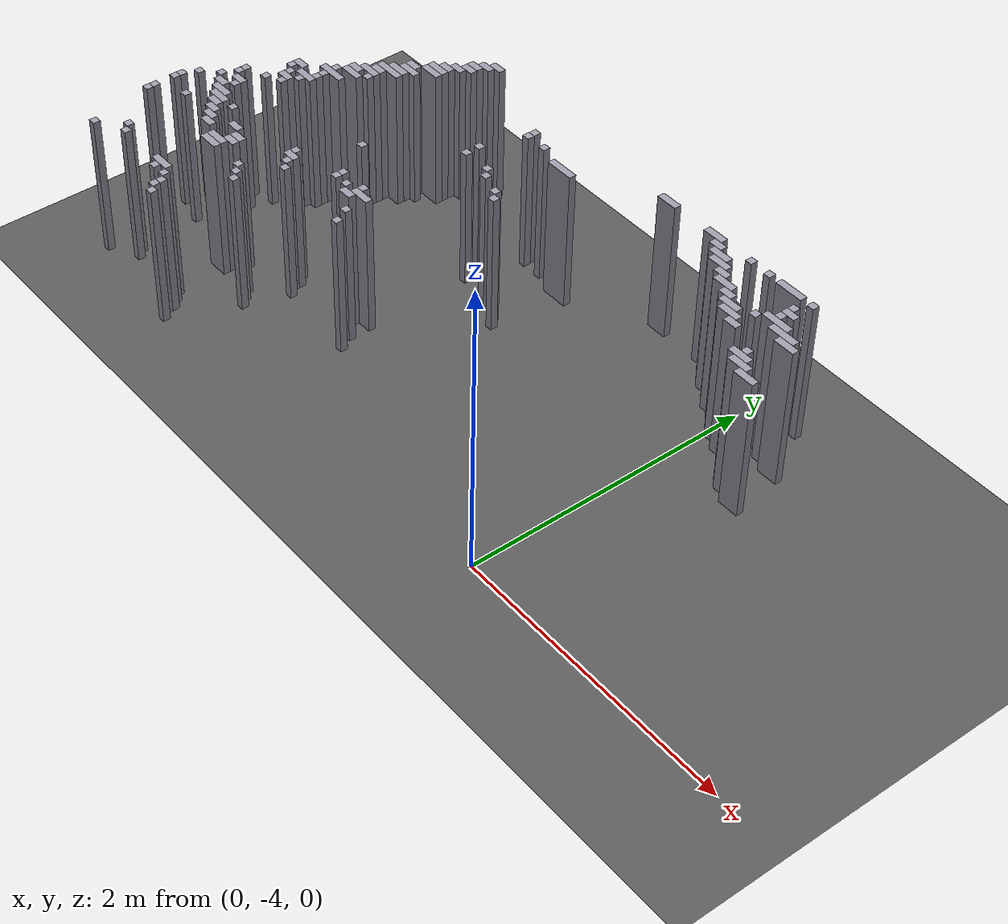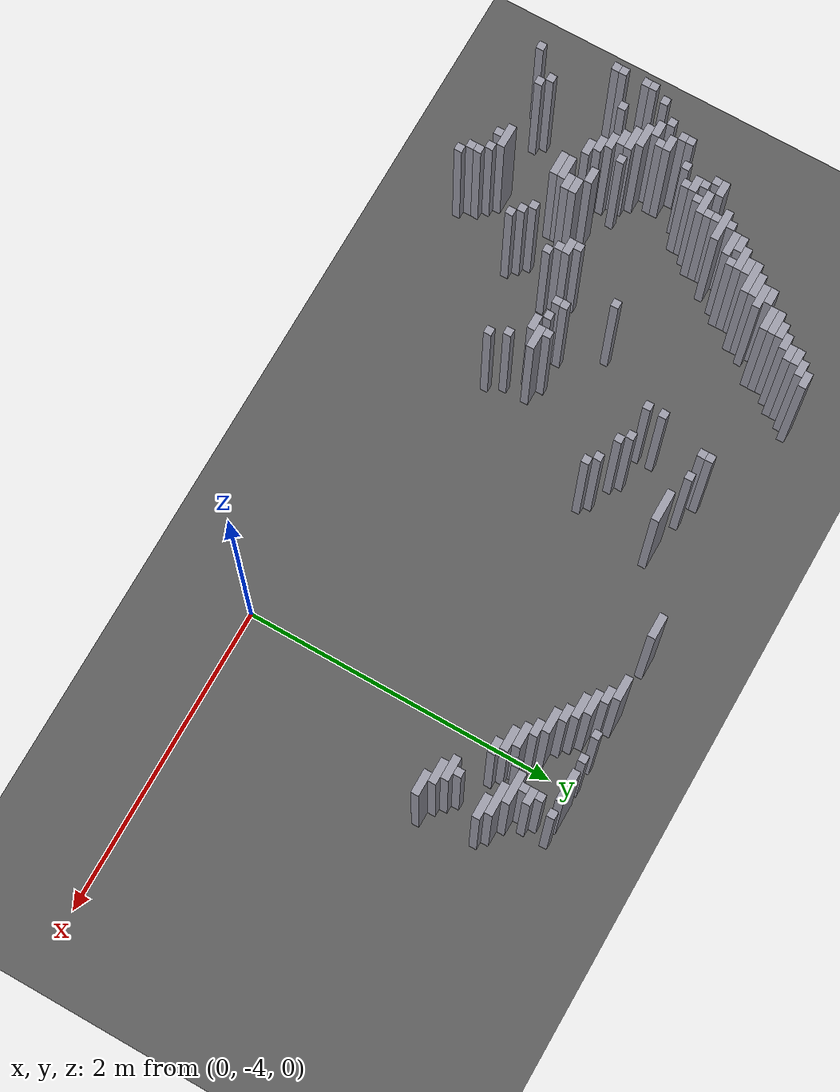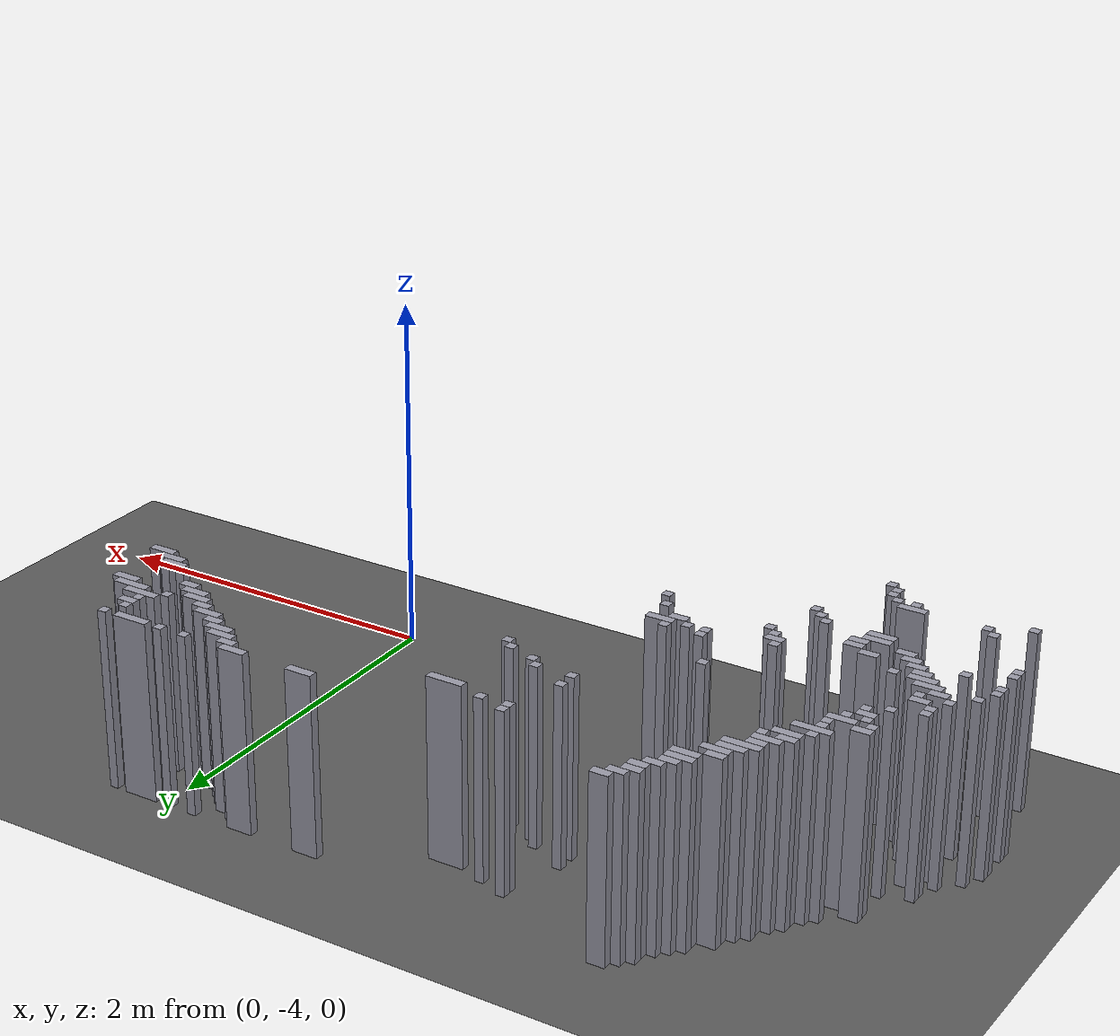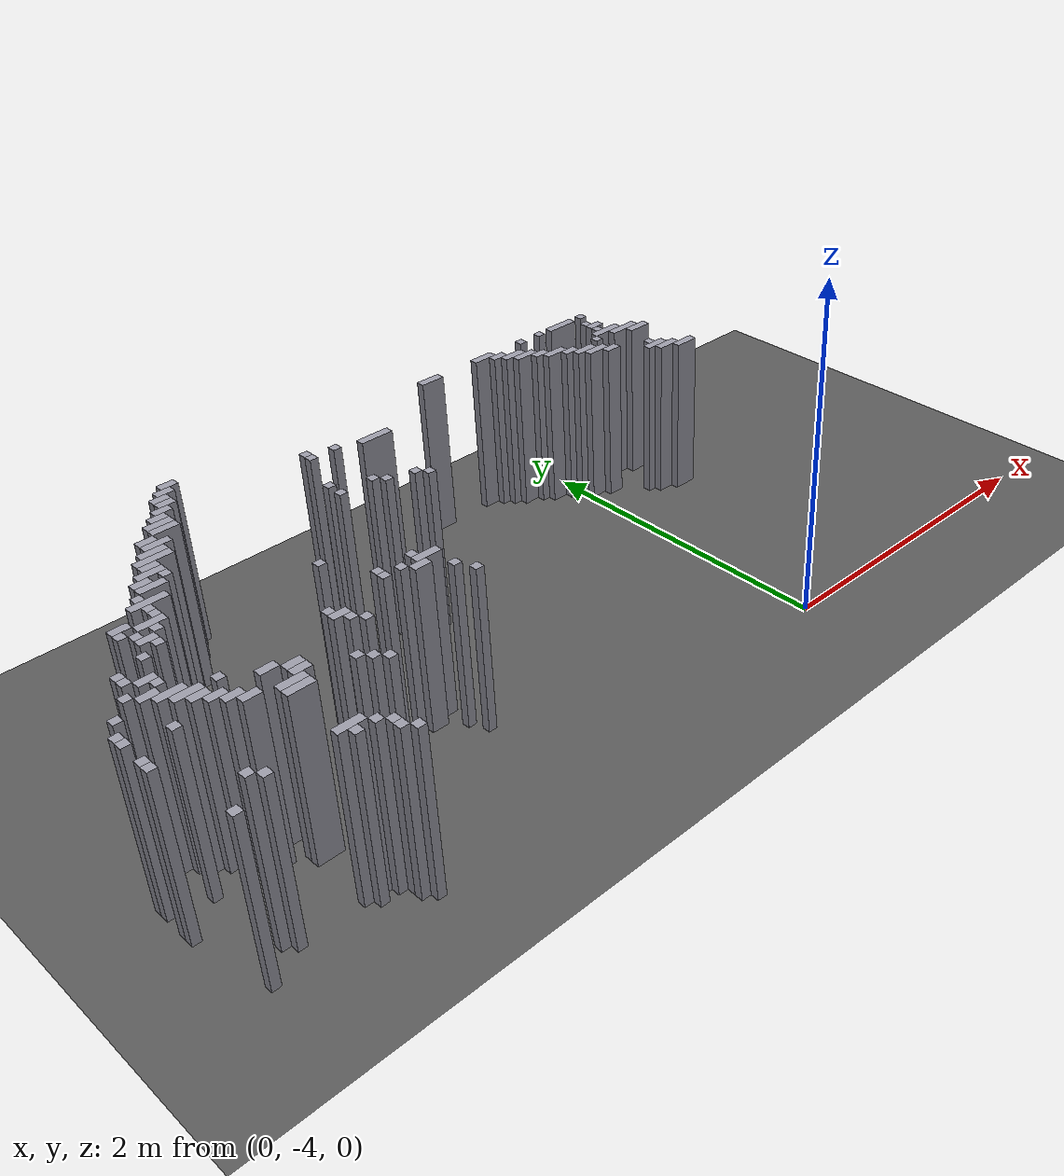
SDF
<sdf version="1.8">
 <world name="dimi">
  <model name="ground">
   <static>true</static>
   <link name="ground_link">
    <collision name="c"><geometry><plane><normal>0 0 1</normal><size>60 60</size></plane></geometry></collision>
    <visual name="v">
     <geometry><plane><normal>0 0 1</normal><size>60 60</size></plane></geometry>
     <material><ambient>0.3 0.3 0.3 1</ambient><diffuse>0.35 0.35 0.35 1</diffuse></material>
    </visual>
   </link>
  </model>
  <model name="walls">
   <static>true</static>
   <link name="wall_282">
    <pose>-2.5400 -1.7950 0.5000 0 0 0</pose>
    <collision name="c"><geometry><box><size>0.1000 0.0500 1.0000</size></box></geometry></collision>
    <visual name="v">
     <geometry><box><size>0.1000 0.0500 1.0000</size></box></geometry>
     <material><ambient>0.5 0.5 0.55 1</ambient><diffuse>0.6 0.6 0.65 1</diffuse></material>
    </visual>
   </link>
   <link name="wall_289">
    <pose>-2.5900 -1.8450 0.5000 0 0 0</pose>
    <collision name="c"><geometry><box><size>0.1000 0.0500 1.0000</size></box></geometry></collision>
    <visual name="v">
     <geometry><box><size>0.1000 0.0500 1.0000</size></box></geometry>
     <material><ambient>0.5 0.5 0.55 1</ambient><diffuse>0.6 0.6 0.65 1</diffuse></material>
    </visual>
   </link>
   <link name="wall_290">
    <pose>-0.8650 -1.8450 0.5000 0 0 0</pose>
    <collision name="c"><geometry><box><size>0.1500 0.0500 1.0000</size></box></geometry></collision>
    <visual name="v">
     <geometry><box><size>0.1500 0.0500 1.0000</size></box></geometry>
     <material><ambient>0.5 0.5 0.55 1</ambient><diffuse>0.6 0.6 0.65 1</diffuse></material>
    </visual>
   </link>
   <link name="wall_291">
    <pose>-0.4650 -1.8450 0.5000 0 0 0</pose>
    <collision name="c"><geometry><box><size>0.1500 0.0500 1.0000</size></box></geometry></collision>
    <visual name="v">
     <geometry><box><size>0.1500 0.0500 1.0000</size></box></geometry>
     <material><ambient>0.5 0.5 0.55 1</ambient><diffuse>0.6 0.6 0.65 1</diffuse></material>
    </visual>
   </link>
   <link name="wall_292">
    <pose>-0.1650 -1.8450 0.5000 0 0 0</pose>
    <collision name="c"><geometry><box><size>0.0500 0.0500 1.0000</size></box></geometry></collision>
    <visual name="v">
     <geometry><box><size>0.0500 0.0500 1.0000</size></box></geometry>
     <material><ambient>0.5 0.5 0.55 1</ambient><diffuse>0.6 0.6 0.65 1</diffuse></material>
    </visual>
   </link>
   <link name="wall_293">
    <pose>-0.0150 -1.8450 0.5000 0 0 0</pose>
    <collision name="c"><geometry><box><size>0.0500 0.0500 1.0000</size></box></geometry></collision>
    <visual name="v">
     <geometry><box><size>0.0500 0.0500 1.0000</size></box></geometry>
     <material><ambient>0.5 0.5 0.55 1</ambient><diffuse>0.6 0.6 0.65 1</diffuse></material>
    </visual>
   </link>
   <link name="wall_294">
    <pose>0.1600 -1.8450 0.5000 0 0 0</pose>
    <collision name="c"><geometry><box><size>0.2000 0.0500 1.0000</size></box></geometry></collision>
    <visual name="v">
     <geometry><box><size>0.2000 0.0500 1.0000</size></box></geometry>
     <material><ambient>0.5 0.5 0.55 1</ambient><diffuse>0.6 0.6 0.65 1</diffuse></material>
    </visual>
   </link>
   <link name="wall_295">
    <pose>0.3350 -1.8450 0.5000 0 0 0</pose>
    <collision name="c"><geometry><box><size>0.0500 0.0500 1.0000</size></box></geometry></collision>
    <visual name="v">
     <geometry><box><size>0.0500 0.0500 1.0000</size></box></geometry>
     <material><ambient>0.5 0.5 0.55 1</ambient><diffuse>0.6 0.6 0.65 1</diffuse></material>
    </visual>
   </link>
   <link name="wall_299">
    <pose>-2.6400 -1.8950 0.5000 0 0 0</pose>
    <collision name="c"><geometry><box><size>0.1000 0.0500 1.0000</size></box></geometry></collision>
    <visual name="v">
     <geometry><box><size>0.1000 0.0500 1.0000</size></box></geometry>
     <material><ambient>0.5 0.5 0.55 1</ambient><diffuse>0.6 0.6 0.65 1</diffuse></material>
    </visual>
   </link>
   <link name="wall_300">
    <pose>-0.3900 -1.8950 0.5000 0 0 0</pose>
    <collision name="c"><geometry><box><size>0.1000 0.0500 1.0000</size></box></geometry></collision>
    <visual name="v">
     <geometry><box><size>0.1000 0.0500 1.0000</size></box></geometry>
     <material><ambient>0.5 0.5 0.55 1</ambient><diffuse>0.6 0.6 0.65 1</diffuse></material>
    </visual>
   </link>
   <link name="wall_304">
    <pose>-2.6400 -1.9450 0.5000 0 0 0</pose>
    <collision name="c"><geometry><box><size>0.1000 0.0500 1.0000</size></box></geometry></collision>
    <visual name="v">
     <geometry><box><size>0.1000 0.0500 1.0000</size></box></geometry>
     <material><ambient>0.5 0.5 0.55 1</ambient><diffuse>0.6 0.6 0.65 1</diffuse></material>
    </visual>
   </link>
   <link name="wall_305">
    <pose>-0.3150 -1.9450 0.5000 0 0 0</pose>
    <collision name="c"><geometry><box><size>0.1500 0.0500 1.0000</size></box></geometry></collision>
    <visual name="v">
     <geometry><box><size>0.1500 0.0500 1.0000</size></box></geometry>
     <material><ambient>0.5 0.5 0.55 1</ambient><diffuse>0.6 0.6 0.65 1</diffuse></material>
    </visual>
   </link>
   <link name="wall_306">
    <pose>0.2850 -1.9450 0.5000 0 0 0</pose>
    <collision name="c"><geometry><box><size>0.0500 0.0500 1.0000</size></box></geometry></collision>
    <visual name="v">
     <geometry><box><size>0.0500 0.0500 1.0000</size></box></geometry>
     <material><ambient>0.5 0.5 0.55 1</ambient><diffuse>0.6 0.6 0.65 1</diffuse></material>
    </visual>
   </link>
   <link name="wall_309">
    <pose>-2.6900 -1.9950 0.5000 0 0 0</pose>
    <collision name="c"><geometry><box><size>0.1000 0.0500 1.0000</size></box></geometry></collision>
    <visual name="v">
     <geometry><box><size>0.1000 0.0500 1.0000</size></box></geometry>
     <material><ambient>0.5 0.5 0.55 1</ambient><diffuse>0.6 0.6 0.65 1</diffuse></material>
    </visual>
   </link>
   <link name="wall_310">
    <pose>-0.2650 -1.9950 0.5000 0 0 0</pose>
    <collision name="c"><geometry><box><size>0.1500 0.0500 1.0000</size></box></geometry></collision>
    <visual name="v">
     <geometry><box><size>0.1500 0.0500 1.0000</size></box></geometry>
     <material><ambient>0.5 0.5 0.55 1</ambient><diffuse>0.6 0.6 0.65 1</diffuse></material>
    </visual>
   </link>
   <link name="wall_311">
    <pose>0.3100 -1.9950 0.5000 0 0 0</pose>
    <collision name="c"><geometry><box><size>0.1000 0.0500 1.0000</size></box></geometry></collision>
    <visual name="v">
     <geometry><box><size>0.1000 0.0500 1.0000</size></box></geometry>
     <material><ambient>0.5 0.5 0.55 1</ambient><diffuse>0.6 0.6 0.65 1</diffuse></material>
    </visual>
   </link>
   <link name="wall_313">
    <pose>-2.7400 -2.0450 0.5000 0 0 0</pose>
    <collision name="c"><geometry><box><size>0.1000 0.0500 1.0000</size></box></geometry></collision>
    <visual name="v">
     <geometry><box><size>0.1000 0.0500 1.0000</size></box></geometry>
     <material><ambient>0.5 0.5 0.55 1</ambient><diffuse>0.6 0.6 0.65 1</diffuse></material>
    </visual>
   </link>
   <link name="wall_314">
    <pose>-1.8650 -2.0450 0.5000 0 0 0</pose>
    <collision name="c"><geometry><box><size>0.0500 0.0500 1.0000</size></box></geometry></collision>
    <visual name="v">
     <geometry><box><size>0.0500 0.0500 1.0000</size></box></geometry>
     <material><ambient>0.5 0.5 0.55 1</ambient><diffuse>0.6 0.6 0.65 1</diffuse></material>
    </visual>
   </link>
   <link name="wall_315">
    <pose>-0.1900 -2.0450 0.5000 0 0 0</pose>
    <collision name="c"><geometry><box><size>0.1000 0.0500 1.0000</size></box></geometry></collision>
    <visual name="v">
     <geometry><box><size>0.1000 0.0500 1.0000</size></box></geometry>
     <material><ambient>0.5 0.5 0.55 1</ambient><diffuse>0.6 0.6 0.65 1</diffuse></material>
    </visual>
   </link>
   <link name="wall_316">
    <pose>0.2850 -2.0450 0.5000 0 0 0</pose>
    <collision name="c"><geometry><box><size>0.0500 0.0500 1.0000</size></box></geometry></collision>
    <visual name="v">
     <geometry><box><size>0.0500 0.0500 1.0000</size></box></geometry>
     <material><ambient>0.5 0.5 0.55 1</ambient><diffuse>0.6 0.6 0.65 1</diffuse></material>
    </visual>
   </link>
   <link name="wall_318">
    <pose>-2.7650 -2.0950 0.5000 0 0 0</pose>
    <collision name="c"><geometry><box><size>0.1500 0.0500 1.0000</size></box></geometry></collision>
    <visual name="v">
     <geometry><box><size>0.1500 0.0500 1.0000</size></box></geometry>
     <material><ambient>0.5 0.5 0.55 1</ambient><diffuse>0.6 0.6 0.65 1</diffuse></material>
    </visual>
   </link>
   <link name="wall_319">
    <pose>-1.8650 -2.0950 0.5000 0 0 0</pose>
    <collision name="c"><geometry><box><size>0.0500 0.0500 1.0000</size></box></geometry></collision>
    <visual name="v">
     <geometry><box><size>0.0500 0.0500 1.0000</size></box></geometry>
     <material><ambient>0.5 0.5 0.55 1</ambient><diffuse>0.6 0.6 0.65 1</diffuse></material>
    </visual>
   </link>
   <link name="wall_320">
    <pose>-1.7150 -2.0950 0.5000 0 0 0</pose>
    <collision name="c"><geometry><box><size>0.0500 0.0500 1.0000</size></box></geometry></collision>
    <visual name="v">
     <geometry><box><size>0.0500 0.0500 1.0000</size></box></geometry>
     <material><ambient>0.5 0.5 0.55 1</ambient><diffuse>0.6 0.6 0.65 1</diffuse></material>
    </visual>
   </link>
   <link name="wall_321">
    <pose>-0.1150 -2.0950 0.5000 0 0 0</pose>
    <collision name="c"><geometry><box><size>0.1500 0.0500 1.0000</size></box></geometry></collision>
    <visual name="v">
     <geometry><box><size>0.1500 0.0500 1.0000</size></box></geometry>
     <material><ambient>0.5 0.5 0.55 1</ambient><diffuse>0.6 0.6 0.65 1</diffuse></material>
    </visual>
   </link>
   <link name="wall_322">
    <pose>0.3100 -2.0950 0.5000 0 0 0</pose>
    <collision name="c"><geometry><box><size>0.2000 0.0500 1.0000</size></box></geometry></collision>
    <visual name="v">
     <geometry><box><size>0.2000 0.0500 1.0000</size></box></geometry>
     <material><ambient>0.5 0.5 0.55 1</ambient><diffuse>0.6 0.6 0.65 1</diffuse></material>
    </visual>
   </link>
   <link name="wall_324">
    <pose>-2.7650 -2.1450 0.5000 0 0 0</pose>
    <collision name="c"><geometry><box><size>0.1500 0.0500 1.0000</size></box></geometry></collision>
    <visual name="v">
     <geometry><box><size>0.1500 0.0500 1.0000</size></box></geometry>
     <material><ambient>0.5 0.5 0.55 1</ambient><diffuse>0.6 0.6 0.65 1</diffuse></material>
    </visual>
   </link>
   <link name="wall_325">
    <pose>-1.4900 -2.1450 0.5000 0 0 0</pose>
    <collision name="c"><geometry><box><size>0.2000 0.0500 1.0000</size></box></geometry></collision>
    <visual name="v">
     <geometry><box><size>0.2000 0.0500 1.0000</size></box></geometry>
     <material><ambient>0.5 0.5 0.55 1</ambient><diffuse>0.6 0.6 0.65 1</diffuse></material>
    </visual>
   </link>
   <link name="wall_326">
    <pose>-0.0400 -2.1450 0.5000 0 0 0</pose>
    <collision name="c"><geometry><box><size>0.1000 0.0500 1.0000</size></box></geometry></collision>
    <visual name="v">
     <geometry><box><size>0.1000 0.0500 1.0000</size></box></geometry>
     <material><ambient>0.5 0.5 0.55 1</ambient><diffuse>0.6 0.6 0.65 1</diffuse></material>
    </visual>
   </link>
   <link name="wall_327">
    <pose>0.1850 -2.1450 0.5000 0 0 0</pose>
    <collision name="c"><geometry><box><size>0.0500 0.0500 1.0000</size></box></geometry></collision>
    <visual name="v">
     <geometry><box><size>0.0500 0.0500 1.0000</size></box></geometry>
     <material><ambient>0.5 0.5 0.55 1</ambient><diffuse>0.6 0.6 0.65 1</diffuse></material>
    </visual>
   </link>
   <link name="wall_328">
    <pose>0.4100 -2.1450 0.5000 0 0 0</pose>
    <collision name="c"><geometry><box><size>0.2000 0.0500 1.0000</size></box></geometry></collision>
    <visual name="v">
     <geometry><box><size>0.2000 0.0500 1.0000</size></box></geometry>
     <material><ambient>0.5 0.5 0.55 1</ambient><diffuse>0.6 0.6 0.65 1</diffuse></material>
    </visual>
   </link>
   <link name="wall_331">
    <pose>-2.8900 -2.1950 0.5000 0 0 0</pose>
    <collision name="c"><geometry><box><size>0.1000 0.0500 1.0000</size></box></geometry></collision>
    <visual name="v">
     <geometry><box><size>0.1000 0.0500 1.0000</size></box></geometry>
     <material><ambient>0.5 0.5 0.55 1</ambient><diffuse>0.6 0.6 0.65 1</diffuse></material>
    </visual>
   </link>
   <link name="wall_332">
    <pose>0.0350 -2.1950 0.5000 0 0 0</pose>
    <collision name="c"><geometry><box><size>0.1500 0.0500 1.0000</size></box></geometry></collision>
    <visual name="v">
     <geometry><box><size>0.1500 0.0500 1.0000</size></box></geometry>
     <material><ambient>0.5 0.5 0.55 1</ambient><diffuse>0.6 0.6 0.65 1</diffuse></material>
    </visual>
   </link>
   <link name="wall_333">
    <pose>0.4850 -2.1950 0.5000 0 0 0</pose>
    <collision name="c"><geometry><box><size>0.1500 0.0500 1.0000</size></box></geometry></collision>
    <visual name="v">
     <geometry><box><size>0.1500 0.0500 1.0000</size></box></geometry>
     <material><ambient>0.5 0.5 0.55 1</ambient><diffuse>0.6 0.6 0.65 1</diffuse></material>
    </visual>
   </link>
   <link name="wall_336">
    <pose>-2.8650 -2.2450 0.5000 0 0 0</pose>
    <collision name="c"><geometry><box><size>0.1500 0.0500 1.0000</size></box></geometry></collision>
    <visual name="v">
     <geometry><box><size>0.1500 0.0500 1.0000</size></box></geometry>
     <material><ambient>0.5 0.5 0.55 1</ambient><diffuse>0.6 0.6 0.65 1</diffuse></material>
    </visual>
   </link>
   <link name="wall_337">
    <pose>0.0850 -2.2450 0.5000 0 0 0</pose>
    <collision name="c"><geometry><box><size>0.1500 0.0500 1.0000</size></box></geometry></collision>
    <visual name="v">
     <geometry><box><size>0.1500 0.0500 1.0000</size></box></geometry>
     <material><ambient>0.5 0.5 0.55 1</ambient><diffuse>0.6 0.6 0.65 1</diffuse></material>
    </visual>
   </link>
   <link name="wall_340">
    <pose>-2.9150 -2.2950 0.5000 0 0 0</pose>
    <collision name="c"><geometry><box><size>0.1500 0.0500 1.0000</size></box></geometry></collision>
    <visual name="v">
     <geometry><box><size>0.1500 0.0500 1.0000</size></box></geometry>
     <material><ambient>0.5 0.5 0.55 1</ambient><diffuse>0.6 0.6 0.65 1</diffuse></material>
    </visual>
   </link>
   <link name="wall_341">
    <pose>0.1600 -2.2950 0.5000 0 0 0</pose>
    <collision name="c"><geometry><box><size>0.1000 0.0500 1.0000</size></box></geometry></collision>
    <visual name="v">
     <geometry><box><size>0.1000 0.0500 1.0000</size></box></geometry>
     <material><ambient>0.5 0.5 0.55 1</ambient><diffuse>0.6 0.6 0.65 1</diffuse></material>
    </visual>
   </link>
   <link name="wall_344">
    <pose>-2.9400 -2.3450 0.5000 0 0 0</pose>
    <collision name="c"><geometry><box><size>0.2000 0.0500 1.0000</size></box></geometry></collision>
    <visual name="v">
     <geometry><box><size>0.2000 0.0500 1.0000</size></box></geometry>
     <material><ambient>0.5 0.5 0.55 1</ambient><diffuse>0.6 0.6 0.65 1</diffuse></material>
    </visual>
   </link>
   <link name="wall_347">
    <pose>-2.9900 -2.3950 0.5000 0 0 0</pose>
    <collision name="c"><geometry><box><size>0.1000 0.0500 1.0000</size></box></geometry></collision>
    <visual name="v">
     <geometry><box><size>0.1000 0.0500 1.0000</size></box></geometry>
     <material><ambient>0.5 0.5 0.55 1</ambient><diffuse>0.6 0.6 0.65 1</diffuse></material>
    </visual>
   </link>
   <link name="wall_348">
    <pose>-1.9650 -2.3950 0.5000 0 0 0</pose>
    <collision name="c"><geometry><box><size>0.0500 0.0500 1.0000</size></box></geometry></collision>
    <visual name="v">
     <geometry><box><size>0.0500 0.0500 1.0000</size></box></geometry>
     <material><ambient>0.5 0.5 0.55 1</ambient><diffuse>0.6 0.6 0.65 1</diffuse></material>
    </visual>
   </link>
   <link name="wall_349">
    <pose>0.3850 -2.3950 0.5000 0 0 0</pose>
    <collision name="c"><geometry><box><size>0.0500 0.0500 1.0000</size></box></geometry></collision>
    <visual name="v">
     <geometry><box><size>0.0500 0.0500 1.0000</size></box></geometry>
     <material><ambient>0.5 0.5 0.55 1</ambient><diffuse>0.6 0.6 0.65 1</diffuse></material>
    </visual>
   </link>
   <link name="wall_352">
    <pose>-3.0150 -2.4450 0.5000 0 0 0</pose>
    <collision name="c"><geometry><box><size>0.1500 0.0500 1.0000</size></box></geometry></collision>
    <visual name="v">
     <geometry><box><size>0.1500 0.0500 1.0000</size></box></geometry>
     <material><ambient>0.5 0.5 0.55 1</ambient><diffuse>0.6 0.6 0.65 1</diffuse></material>
    </visual>
   </link>
   <link name="wall_353">
    <pose>0.3850 -2.4450 0.5000 0 0 0</pose>
    <collision name="c"><geometry><box><size>0.1500 0.0500 1.0000</size></box></geometry></collision>
    <visual name="v">
     <geometry><box><size>0.1500 0.0500 1.0000</size></box></geometry>
     <material><ambient>0.5 0.5 0.55 1</ambient><diffuse>0.6 0.6 0.65 1</diffuse></material>
    </visual>
   </link>
   <link name="wall_356">
    <pose>-3.0900 -2.4950 0.5000 0 0 0</pose>
    <collision name="c"><geometry><box><size>0.1000 0.0500 1.0000</size></box></geometry></collision>
    <visual name="v">
     <geometry><box><size>0.1000 0.0500 1.0000</size></box></geometry>
     <material><ambient>0.5 0.5 0.55 1</ambient><diffuse>0.6 0.6 0.65 1</diffuse></material>
    </visual>
   </link>
   <link name="wall_357">
    <pose>-2.9650 -2.4950 0.5000 0 0 0</pose>
    <collision name="c"><geometry><box><size>0.0500 0.0500 1.0000</size></box></geometry></collision>
    <visual name="v">
     <geometry><box><size>0.0500 0.0500 1.0000</size></box></geometry>
     <material><ambient>0.5 0.5 0.55 1</ambient><diffuse>0.6 0.6 0.65 1</diffuse></material>
    </visual>
   </link>
   <link name="wall_358">
    <pose>-1.9650 -2.4950 0.5000 0 0 0</pose>
    <collision name="c"><geometry><box><size>0.0500 0.0500 1.0000</size></box></geometry></collision>
    <visual name="v">
     <geometry><box><size>0.0500 0.0500 1.0000</size></box></geometry>
     <material><ambient>0.5 0.5 0.55 1</ambient><diffuse>0.6 0.6 0.65 1</diffuse></material>
    </visual>
   </link>
   <link name="wall_359">
    <pose>-1.7650 -2.4950 0.5000 0 0 0</pose>
    <collision name="c"><geometry><box><size>0.0500 0.0500 1.0000</size></box></geometry></collision>
    <visual name="v">
     <geometry><box><size>0.0500 0.0500 1.0000</size></box></geometry>
     <material><ambient>0.5 0.5 0.55 1</ambient><diffuse>0.6 0.6 0.65 1</diffuse></material>
    </visual>
   </link>
   <link name="wall_360">
    <pose>0.4350 -2.4950 0.5000 0 0 0</pose>
    <collision name="c"><geometry><box><size>0.1500 0.0500 1.0000</size></box></geometry></collision>
    <visual name="v">
     <geometry><box><size>0.1500 0.0500 1.0000</size></box></geometry>
     <material><ambient>0.5 0.5 0.55 1</ambient><diffuse>0.6 0.6 0.65 1</diffuse></material>
    </visual>
   </link>
   <link name="wall_364">
    <pose>-3.0650 -2.5450 0.5000 0 0 0</pose>
    <collision name="c"><geometry><box><size>0.1500 0.0500 1.0000</size></box></geometry></collision>
    <visual name="v">
     <geometry><box><size>0.1500 0.0500 1.0000</size></box></geometry>
     <material><ambient>0.5 0.5 0.55 1</ambient><diffuse>0.6 0.6 0.65 1</diffuse></material>
    </visual>
   </link>
   <link name="wall_365">
    <pose>-1.7150 -2.5450 0.5000 0 0 0</pose>
    <collision name="c"><geometry><box><size>0.0500 0.0500 1.0000</size></box></geometry></collision>
    <visual name="v">
     <geometry><box><size>0.0500 0.0500 1.0000</size></box></geometry>
     <material><ambient>0.5 0.5 0.55 1</ambient><diffuse>0.6 0.6 0.65 1</diffuse></material>
    </visual>
   </link>
   <link name="wall_366">
    <pose>0.5350 -2.5450 0.5000 0 0 0</pose>
    <collision name="c"><geometry><box><size>0.1500 0.0500 1.0000</size></box></geometry></collision>
    <visual name="v">
     <geometry><box><size>0.1500 0.0500 1.0000</size></box></geometry>
     <material><ambient>0.5 0.5 0.55 1</ambient><diffuse>0.6 0.6 0.65 1</diffuse></material>
    </visual>
   </link>
   <link name="wall_372">
    <pose>-3.1650 -2.5950 0.5000 0 0 0</pose>
    <collision name="c"><geometry><box><size>0.0500 0.0500 1.0000</size></box></geometry></collision>
    <visual name="v">
     <geometry><box><size>0.0500 0.0500 1.0000</size></box></geometry>
     <material><ambient>0.5 0.5 0.55 1</ambient><diffuse>0.6 0.6 0.65 1</diffuse></material>
    </visual>
   </link>
   <link name="wall_373">
    <pose>-1.5650 -2.5950 0.5000 0 0 0</pose>
    <collision name="c"><geometry><box><size>0.0500 0.0500 1.0000</size></box></geometry></collision>
    <visual name="v">
     <geometry><box><size>0.0500 0.0500 1.0000</size></box></geometry>
     <material><ambient>0.5 0.5 0.55 1</ambient><diffuse>0.6 0.6 0.65 1</diffuse></material>
    </visual>
   </link>
   <link name="wall_379">
    <pose>-3.1400 -2.6450 0.5000 0 0 0</pose>
    <collision name="c"><geometry><box><size>0.2000 0.0500 1.0000</size></box></geometry></collision>
    <visual name="v">
     <geometry><box><size>0.2000 0.0500 1.0000</size></box></geometry>
     <material><ambient>0.5 0.5 0.55 1</ambient><diffuse>0.6 0.6 0.65 1</diffuse></material>
    </visual>
   </link>
   <link name="wall_380">
    <pose>-1.5150 -2.6450 0.5000 0 0 0</pose>
    <collision name="c"><geometry><box><size>0.0500 0.0500 1.0000</size></box></geometry></collision>
    <visual name="v">
     <geometry><box><size>0.0500 0.0500 1.0000</size></box></geometry>
     <material><ambient>0.5 0.5 0.55 1</ambient><diffuse>0.6 0.6 0.65 1</diffuse></material>
    </visual>
   </link>
   <link name="wall_383">
    <pose>-3.1650 -2.6950 0.5000 0 0 0</pose>
    <collision name="c"><geometry><box><size>0.0500 0.0500 1.0000</size></box></geometry></collision>
    <visual name="v">
     <geometry><box><size>0.0500 0.0500 1.0000</size></box></geometry>
     <material><ambient>0.5 0.5 0.55 1</ambient><diffuse>0.6 0.6 0.65 1</diffuse></material>
    </visual>
   </link>
   <link name="wall_386">
    <pose>-3.3400 -2.7450 0.5000 0 0 0</pose>
    <collision name="c"><geometry><box><size>0.1000 0.0500 1.0000</size></box></geometry></collision>
    <visual name="v">
     <geometry><box><size>0.1000 0.0500 1.0000</size></box></geometry>
     <material><ambient>0.5 0.5 0.55 1</ambient><diffuse>0.6 0.6 0.65 1</diffuse></material>
    </visual>
   </link>
   <link name="wall_387">
    <pose>-3.1650 -2.7450 0.5000 0 0 0</pose>
    <collision name="c"><geometry><box><size>0.0500 0.0500 1.0000</size></box></geometry></collision>
    <visual name="v">
     <geometry><box><size>0.0500 0.0500 1.0000</size></box></geometry>
     <material><ambient>0.5 0.5 0.55 1</ambient><diffuse>0.6 0.6 0.65 1</diffuse></material>
    </visual>
   </link>
   <link name="wall_390">
    <pose>-3.3650 -2.7950 0.5000 0 0 0</pose>
    <collision name="c"><geometry><box><size>0.0500 0.0500 1.0000</size></box></geometry></collision>
    <visual name="v">
     <geometry><box><size>0.0500 0.0500 1.0000</size></box></geometry>
     <material><ambient>0.5 0.5 0.55 1</ambient><diffuse>0.6 0.6 0.65 1</diffuse></material>
    </visual>
   </link>
   <link name="wall_391">
    <pose>-3.2150 -2.7950 0.5000 0 0 0</pose>
    <collision name="c"><geometry><box><size>0.1500 0.0500 1.0000</size></box></geometry></collision>
    <visual name="v">
     <geometry><box><size>0.1500 0.0500 1.0000</size></box></geometry>
     <material><ambient>0.5 0.5 0.55 1</ambient><diffuse>0.6 0.6 0.65 1</diffuse></material>
    </visual>
   </link>
   <link name="wall_394">
    <pose>-3.3150 -2.8450 0.5000 0 0 0</pose>
    <collision name="c"><geometry><box><size>0.0500 0.0500 1.0000</size></box></geometry></collision>
    <visual name="v">
     <geometry><box><size>0.0500 0.0500 1.0000</size></box></geometry>
     <material><ambient>0.5 0.5 0.55 1</ambient><diffuse>0.6 0.6 0.65 1</diffuse></material>
    </visual>
   </link>
   <link name="wall_395">
    <pose>-3.2150 -2.8450 0.5000 0 0 0</pose>
    <collision name="c"><geometry><box><size>0.0500 0.0500 1.0000</size></box></geometry></collision>
    <visual name="v">
     <geometry><box><size>0.0500 0.0500 1.0000</size></box></geometry>
     <material><ambient>0.5 0.5 0.55 1</ambient><diffuse>0.6 0.6 0.65 1</diffuse></material>
    </visual>
   </link>
   <link name="wall_398">
    <pose>-3.2900 -2.8950 0.5000 0 0 0</pose>
    <collision name="c"><geometry><box><size>0.1000 0.0500 1.0000</size></box></geometry></collision>
    <visual name="v">
     <geometry><box><size>0.1000 0.0500 1.0000</size></box></geometry>
     <material><ambient>0.5 0.5 0.55 1</ambient><diffuse>0.6 0.6 0.65 1</diffuse></material>
    </visual>
   </link>
   <link name="wall_401">
    <pose>-3.2650 -2.9450 0.5000 0 0 0</pose>
    <collision name="c"><geometry><box><size>0.0500 0.0500 1.0000</size></box></geometry></collision>
    <visual name="v">
     <geometry><box><size>0.0500 0.0500 1.0000</size></box></geometry>
     <material><ambient>0.5 0.5 0.55 1</ambient><diffuse>0.6 0.6 0.65 1</diffuse></material>
    </visual>
   </link>
   <link name="wall_402">
    <pose>-2.4150 -2.9450 0.5000 0 0 0</pose>
    <collision name="c"><geometry><box><size>0.0500 0.0500 1.0000</size></box></geometry></collision>
    <visual name="v">
     <geometry><box><size>0.0500 0.0500 1.0000</size></box></geometry>
     <material><ambient>0.5 0.5 0.55 1</ambient><diffuse>0.6 0.6 0.65 1</diffuse></material>
    </visual>
   </link>
   <link name="wall_405">
    <pose>-3.3650 -2.9950 0.5000 0 0 0</pose>
    <collision name="c"><geometry><box><size>0.0500 0.0500 1.0000</size></box></geometry></collision>
    <visual name="v">
     <geometry><box><size>0.0500 0.0500 1.0000</size></box></geometry>
     <material><ambient>0.5 0.5 0.55 1</ambient><diffuse>0.6 0.6 0.65 1</diffuse></material>
    </visual>
   </link>
   <link name="wall_408">
    <pose>-3.5150 -3.0450 0.5000 0 0 0</pose>
    <collision name="c"><geometry><box><size>0.0500 0.0500 1.0000</size></box></geometry></collision>
    <visual name="v">
     <geometry><box><size>0.0500 0.0500 1.0000</size></box></geometry>
     <material><ambient>0.5 0.5 0.55 1</ambient><diffuse>0.6 0.6 0.65 1</diffuse></material>
    </visual>
   </link>
   <link name="wall_412">
    <pose>-3.5150 -3.0950 0.5000 0 0 0</pose>
    <collision name="c"><geometry><box><size>0.0500 0.0500 1.0000</size></box></geometry></collision>
    <visual name="v">
     <geometry><box><size>0.0500 0.0500 1.0000</size></box></geometry>
     <material><ambient>0.5 0.5 0.55 1</ambient><diffuse>0.6 0.6 0.65 1</diffuse></material>
    </visual>
   </link>
   <link name="wall_417">
    <pose>-3.4400 -3.1450 0.5000 0 0 0</pose>
    <collision name="c"><geometry><box><size>0.1000 0.0500 1.0000</size></box></geometry></collision>
    <visual name="v">
     <geometry><box><size>0.1000 0.0500 1.0000</size></box></geometry>
     <material><ambient>0.5 0.5 0.55 1</ambient><diffuse>0.6 0.6 0.65 1</diffuse></material>
    </visual>
   </link>
   <link name="wall_423">
    <pose>-3.5650 -3.1950 0.5000 0 0 0</pose>
    <collision name="c"><geometry><box><size>0.0500 0.0500 1.0000</size></box></geometry></collision>
    <visual name="v">
     <geometry><box><size>0.0500 0.0500 1.0000</size></box></geometry>
     <material><ambient>0.5 0.5 0.55 1</ambient><diffuse>0.6 0.6 0.65 1</diffuse></material>
    </visual>
   </link>
   <link name="wall_424">
    <pose>-3.4150 -3.1950 0.5000 0 0 0</pose>
    <collision name="c"><geometry><box><size>0.0500 0.0500 1.0000</size></box></geometry></collision>
    <visual name="v">
     <geometry><box><size>0.0500 0.0500 1.0000</size></box></geometry>
     <material><ambient>0.5 0.5 0.55 1</ambient><diffuse>0.6 0.6 0.65 1</diffuse></material>
    </visual>
   </link>
   <link name="wall_425">
    <pose>-2.2650 -3.1950 0.5000 0 0 0</pose>
    <collision name="c"><geometry><box><size>0.0500 0.0500 1.0000</size></box></geometry></collision>
    <visual name="v">
     <geometry><box><size>0.0500 0.0500 1.0000</size></box></geometry>
     <material><ambient>0.5 0.5 0.55 1</ambient><diffuse>0.6 0.6 0.65 1</diffuse></material>
    </visual>
   </link>
   <link name="wall_426">
    <pose>-2.0650 -3.1950 0.5000 0 0 0</pose>
    <collision name="c"><geometry><box><size>0.0500 0.0500 1.0000</size></box></geometry></collision>
    <visual name="v">
     <geometry><box><size>0.0500 0.0500 1.0000</size></box></geometry>
     <material><ambient>0.5 0.5 0.55 1</ambient><diffuse>0.6 0.6 0.65 1</diffuse></material>
    </visual>
   </link>
   <link name="wall_433">
    <pose>-3.4900 -3.2450 0.5000 0 0 0</pose>
    <collision name="c"><geometry><box><size>0.1000 0.0500 1.0000</size></box></geometry></collision>
    <visual name="v">
     <geometry><box><size>0.1000 0.0500 1.0000</size></box></geometry>
     <material><ambient>0.5 0.5 0.55 1</ambient><diffuse>0.6 0.6 0.65 1</diffuse></material>
    </visual>
   </link>
   <link name="wall_434">
    <pose>-2.2650 -3.2450 0.5000 0 0 0</pose>
    <collision name="c"><geometry><box><size>0.0500 0.0500 1.0000</size></box></geometry></collision>
    <visual name="v">
     <geometry><box><size>0.0500 0.0500 1.0000</size></box></geometry>
     <material><ambient>0.5 0.5 0.55 1</ambient><diffuse>0.6 0.6 0.65 1</diffuse></material>
    </visual>
   </link>
   <link name="wall_435">
    <pose>-2.1650 -3.2450 0.5000 0 0 0</pose>
    <collision name="c"><geometry><box><size>0.0500 0.0500 1.0000</size></box></geometry></collision>
    <visual name="v">
     <geometry><box><size>0.0500 0.0500 1.0000</size></box></geometry>
     <material><ambient>0.5 0.5 0.55 1</ambient><diffuse>0.6 0.6 0.65 1</diffuse></material>
    </visual>
   </link>
   <link name="wall_436">
    <pose>-2.0150 -3.2450 0.5000 0 0 0</pose>
    <collision name="c"><geometry><box><size>0.1500 0.0500 1.0000</size></box></geometry></collision>
    <visual name="v">
     <geometry><box><size>0.1500 0.0500 1.0000</size></box></geometry>
     <material><ambient>0.5 0.5 0.55 1</ambient><diffuse>0.6 0.6 0.65 1</diffuse></material>
    </visual>
   </link>
   <link name="wall_443">
    <pose>-3.6650 -3.2950 0.5000 0 0 0</pose>
    <collision name="c"><geometry><box><size>0.0500 0.0500 1.0000</size></box></geometry></collision>
    <visual name="v">
     <geometry><box><size>0.0500 0.0500 1.0000</size></box></geometry>
     <material><ambient>0.5 0.5 0.55 1</ambient><diffuse>0.6 0.6 0.65 1</diffuse></material>
    </visual>
   </link>
   <link name="wall_444">
    <pose>-3.4150 -3.2950 0.5000 0 0 0</pose>
    <collision name="c"><geometry><box><size>0.1500 0.0500 1.0000</size></box></geometry></collision>
    <visual name="v">
     <geometry><box><size>0.1500 0.0500 1.0000</size></box></geometry>
     <material><ambient>0.5 0.5 0.55 1</ambient><diffuse>0.6 0.6 0.65 1</diffuse></material>
    </visual>
   </link>
   <link name="wall_445">
    <pose>-2.6150 -3.2950 0.5000 0 0 0</pose>
    <collision name="c"><geometry><box><size>0.0500 0.0500 1.0000</size></box></geometry></collision>
    <visual name="v">
     <geometry><box><size>0.0500 0.0500 1.0000</size></box></geometry>
     <material><ambient>0.5 0.5 0.55 1</ambient><diffuse>0.6 0.6 0.65 1</diffuse></material>
    </visual>
   </link>
   <link name="wall_446">
    <pose>-2.0900 -3.2950 0.5000 0 0 0</pose>
    <collision name="c"><geometry><box><size>0.1000 0.0500 1.0000</size></box></geometry></collision>
    <visual name="v">
     <geometry><box><size>0.1000 0.0500 1.0000</size></box></geometry>
     <material><ambient>0.5 0.5 0.55 1</ambient><diffuse>0.6 0.6 0.65 1</diffuse></material>
    </visual>
   </link>
   <link name="wall_452">
    <pose>-3.3650 -3.3450 0.5000 0 0 0</pose>
    <collision name="c"><geometry><box><size>0.1500 0.0500 1.0000</size></box></geometry></collision>
    <visual name="v">
     <geometry><box><size>0.1500 0.0500 1.0000</size></box></geometry>
     <material><ambient>0.5 0.5 0.55 1</ambient><diffuse>0.6 0.6 0.65 1</diffuse></material>
    </visual>
   </link>
   <link name="wall_453">
    <pose>-3.2150 -3.3450 0.5000 0 0 0</pose>
    <collision name="c"><geometry><box><size>0.0500 0.0500 1.0000</size></box></geometry></collision>
    <visual name="v">
     <geometry><box><size>0.0500 0.0500 1.0000</size></box></geometry>
     <material><ambient>0.5 0.5 0.55 1</ambient><diffuse>0.6 0.6 0.65 1</diffuse></material>
    </visual>
   </link>
   <link name="wall_454">
    <pose>-2.5900 -3.3450 0.5000 0 0 0</pose>
    <collision name="c"><geometry><box><size>0.1000 0.0500 1.0000</size></box></geometry></collision>
    <visual name="v">
     <geometry><box><size>0.1000 0.0500 1.0000</size></box></geometry>
     <material><ambient>0.5 0.5 0.55 1</ambient><diffuse>0.6 0.6 0.65 1</diffuse></material>
    </visual>
   </link>
   <link name="wall_459">
    <pose>-3.7150 -3.3950 0.5000 0 0 0</pose>
    <collision name="c"><geometry><box><size>0.0500 0.0500 1.0000</size></box></geometry></collision>
    <visual name="v">
     <geometry><box><size>0.0500 0.0500 1.0000</size></box></geometry>
     <material><ambient>0.5 0.5 0.55 1</ambient><diffuse>0.6 0.6 0.65 1</diffuse></material>
    </visual>
   </link>
   <link name="wall_460">
    <pose>-3.3400 -3.3950 0.5000 0 0 0</pose>
    <collision name="c"><geometry><box><size>0.1000 0.0500 1.0000</size></box></geometry></collision>
    <visual name="v">
     <geometry><box><size>0.1000 0.0500 1.0000</size></box></geometry>
     <material><ambient>0.5 0.5 0.55 1</ambient><diffuse>0.6 0.6 0.65 1</diffuse></material>
    </visual>
   </link>
   <link name="wall_461">
    <pose>-2.5650 -3.3950 0.5000 0 0 0</pose>
    <collision name="c"><geometry><box><size>0.0500 0.0500 1.0000</size></box></geometry></collision>
    <visual name="v">
     <geometry><box><size>0.0500 0.0500 1.0000</size></box></geometry>
     <material><ambient>0.5 0.5 0.55 1</ambient><diffuse>0.6 0.6 0.65 1</diffuse></material>
    </visual>
   </link>
   <link name="wall_462">
    <pose>-1.9650 -3.3950 0.5000 0 0 0</pose>
    <collision name="c"><geometry><box><size>0.0500 0.0500 1.0000</size></box></geometry></collision>
    <visual name="v">
     <geometry><box><size>0.0500 0.0500 1.0000</size></box></geometry>
     <material><ambient>0.5 0.5 0.55 1</ambient><diffuse>0.6 0.6 0.65 1</diffuse></material>
    </visual>
   </link>
   <link name="wall_468">
    <pose>-3.7150 -3.4450 0.5000 0 0 0</pose>
    <collision name="c"><geometry><box><size>0.0500 0.0500 1.0000</size></box></geometry></collision>
    <visual name="v">
     <geometry><box><size>0.0500 0.0500 1.0000</size></box></geometry>
     <material><ambient>0.5 0.5 0.55 1</ambient><diffuse>0.6 0.6 0.65 1</diffuse></material>
    </visual>
   </link>
   <link name="wall_469">
    <pose>-3.2900 -3.4450 0.5000 0 0 0</pose>
    <collision name="c"><geometry><box><size>0.1000 0.0500 1.0000</size></box></geometry></collision>
    <visual name="v">
     <geometry><box><size>0.1000 0.0500 1.0000</size></box></geometry>
     <material><ambient>0.5 0.5 0.55 1</ambient><diffuse>0.6 0.6 0.65 1</diffuse></material>
    </visual>
   </link>
   <link name="wall_470">
    <pose>-3.0400 -3.4450 0.5000 0 0 0</pose>
    <collision name="c"><geometry><box><size>0.1000 0.0500 1.0000</size></box></geometry></collision>
    <visual name="v">
     <geometry><box><size>0.1000 0.0500 1.0000</size></box></geometry>
     <material><ambient>0.5 0.5 0.55 1</ambient><diffuse>0.6 0.6 0.65 1</diffuse></material>
    </visual>
   </link>
   <link name="wall_471">
    <pose>-2.5150 -3.4450 0.5000 0 0 0</pose>
    <collision name="c"><geometry><box><size>0.0500 0.0500 1.0000</size></box></geometry></collision>
    <visual name="v">
     <geometry><box><size>0.0500 0.0500 1.0000</size></box></geometry>
     <material><ambient>0.5 0.5 0.55 1</ambient><diffuse>0.6 0.6 0.65 1</diffuse></material>
    </visual>
   </link>
   <link name="wall_476">
    <pose>-3.5150 -3.4950 0.5000 0 0 0</pose>
    <collision name="c"><geometry><box><size>0.0500 0.0500 1.0000</size></box></geometry></collision>
    <visual name="v">
     <geometry><box><size>0.0500 0.0500 1.0000</size></box></geometry>
     <material><ambient>0.5 0.5 0.55 1</ambient><diffuse>0.6 0.6 0.65 1</diffuse></material>
    </visual>
   </link>
   <link name="wall_477">
    <pose>-3.2400 -3.4950 0.5000 0 0 0</pose>
    <collision name="c"><geometry><box><size>0.1000 0.0500 1.0000</size></box></geometry></collision>
    <visual name="v">
     <geometry><box><size>0.1000 0.0500 1.0000</size></box></geometry>
     <material><ambient>0.5 0.5 0.55 1</ambient><diffuse>0.6 0.6 0.65 1</diffuse></material>
    </visual>
   </link>
   <link name="wall_478">
    <pose>-2.9400 -3.4950 0.5000 0 0 0</pose>
    <collision name="c"><geometry><box><size>0.1000 0.0500 1.0000</size></box></geometry></collision>
    <visual name="v">
     <geometry><box><size>0.1000 0.0500 1.0000</size></box></geometry>
     <material><ambient>0.5 0.5 0.55 1</ambient><diffuse>0.6 0.6 0.65 1</diffuse></material>
    </visual>
   </link>
   <link name="wall_479">
    <pose>-1.9150 -3.4950 0.5000 0 0 0</pose>
    <collision name="c"><geometry><box><size>0.0500 0.0500 1.0000</size></box></geometry></collision>
    <visual name="v">
     <geometry><box><size>0.0500 0.0500 1.0000</size></box></geometry>
     <material><ambient>0.5 0.5 0.55 1</ambient><diffuse>0.6 0.6 0.65 1</diffuse></material>
    </visual>
   </link>
   <link name="wall_485">
    <pose>-3.1900 -3.5450 0.5000 0 0 0</pose>
    <collision name="c"><geometry><box><size>0.1000 0.0500 1.0000</size></box></geometry></collision>
    <visual name="v">
     <geometry><box><size>0.1000 0.0500 1.0000</size></box></geometry>
     <material><ambient>0.5 0.5 0.55 1</ambient><diffuse>0.6 0.6 0.65 1</diffuse></material>
    </visual>
   </link>
   <link name="wall_486">
    <pose>-2.9400 -3.5450 0.5000 0 0 0</pose>
    <collision name="c"><geometry><box><size>0.1000 0.0500 1.0000</size></box></geometry></collision>
    <visual name="v">
     <geometry><box><size>0.1000 0.0500 1.0000</size></box></geometry>
     <material><ambient>0.5 0.5 0.55 1</ambient><diffuse>0.6 0.6 0.65 1</diffuse></material>
    </visual>
   </link>
   <link name="wall_491">
    <pose>-3.7150 -3.5950 0.5000 0 0 0</pose>
    <collision name="c"><geometry><box><size>0.0500 0.0500 1.0000</size></box></geometry></collision>
    <visual name="v">
     <geometry><box><size>0.0500 0.0500 1.0000</size></box></geometry>
     <material><ambient>0.5 0.5 0.55 1</ambient><diffuse>0.6 0.6 0.65 1</diffuse></material>
    </visual>
   </link>
   <link name="wall_492">
    <pose>-3.0150 -3.5950 0.5000 0 0 0</pose>
    <collision name="c"><geometry><box><size>0.1500 0.0500 1.0000</size></box></geometry></collision>
    <visual name="v">
     <geometry><box><size>0.1500 0.0500 1.0000</size></box></geometry>
     <material><ambient>0.5 0.5 0.55 1</ambient><diffuse>0.6 0.6 0.65 1</diffuse></material>
    </visual>
   </link>
   <link name="wall_498">
    <pose>-3.7150 -3.6450 0.5000 0 0 0</pose>
    <collision name="c"><geometry><box><size>0.0500 0.0500 1.0000</size></box></geometry></collision>
    <visual name="v">
     <geometry><box><size>0.0500 0.0500 1.0000</size></box></geometry>
     <material><ambient>0.5 0.5 0.55 1</ambient><diffuse>0.6 0.6 0.65 1</diffuse></material>
    </visual>
   </link>
   <link name="wall_499">
    <pose>-3.0150 -3.6450 0.5000 0 0 0</pose>
    <collision name="c"><geometry><box><size>0.1500 0.0500 1.0000</size></box></geometry></collision>
    <visual name="v">
     <geometry><box><size>0.1500 0.0500 1.0000</size></box></geometry>
     <material><ambient>0.5 0.5 0.55 1</ambient><diffuse>0.6 0.6 0.65 1</diffuse></material>
    </visual>
   </link>
   <link name="wall_500">
    <pose>-2.7150 -3.6450 0.5000 0 0 0</pose>
    <collision name="c"><geometry><box><size>0.0500 0.0500 1.0000</size></box></geometry></collision>
    <visual name="v">
     <geometry><box><size>0.0500 0.0500 1.0000</size></box></geometry>
     <material><ambient>0.5 0.5 0.55 1</ambient><diffuse>0.6 0.6 0.65 1</diffuse></material>
    </visual>
   </link>
   <link name="wall_506">
    <pose>-2.6650 -3.6950 0.5000 0 0 0</pose>
    <collision name="c"><geometry><box><size>0.0500 0.0500 1.0000</size></box></geometry></collision>
    <visual name="v">
     <geometry><box><size>0.0500 0.0500 1.0000</size></box></geometry>
     <material><ambient>0.5 0.5 0.55 1</ambient><diffuse>0.6 0.6 0.65 1</diffuse></material>
    </visual>
   </link>
   <link name="wall_513">
    <pose>-2.6150 -3.7450 0.5000 0 0 0</pose>
    <collision name="c"><geometry><box><size>0.0500 0.0500 1.0000</size></box></geometry></collision>
    <visual name="v">
     <geometry><box><size>0.0500 0.0500 1.0000</size></box></geometry>
     <material><ambient>0.5 0.5 0.55 1</ambient><diffuse>0.6 0.6 0.65 1</diffuse></material>
    </visual>
   </link>
   <link name="wall_532">
    <pose>-3.4650 -3.9450 0.5000 0 0 0</pose>
    <collision name="c"><geometry><box><size>0.0500 0.0500 1.0000</size></box></geometry></collision>
    <visual name="v">
     <geometry><box><size>0.0500 0.0500 1.0000</size></box></geometry>
     <material><ambient>0.5 0.5 0.55 1</ambient><diffuse>0.6 0.6 0.65 1</diffuse></material>
    </visual>
   </link>
   <link name="wall_536">
    <pose>-3.4150 -3.9950 0.5000 0 0 0</pose>
    <collision name="c"><geometry><box><size>0.0500 0.0500 1.0000</size></box></geometry></collision>
    <visual name="v">
     <geometry><box><size>0.0500 0.0500 1.0000</size></box></geometry>
     <material><ambient>0.5 0.5 0.55 1</ambient><diffuse>0.6 0.6 0.65 1</diffuse></material>
    </visual>
   </link>
   <link name="wall_537">
    <pose>-3.0150 -3.9950 0.5000 0 0 0</pose>
    <collision name="c"><geometry><box><size>0.1500 0.0500 1.0000</size></box></geometry></collision>
    <visual name="v">
     <geometry><box><size>0.1500 0.0500 1.0000</size></box></geometry>
     <material><ambient>0.5 0.5 0.55 1</ambient><diffuse>0.6 0.6 0.65 1</diffuse></material>
    </visual>
   </link>
   <link name="wall_542">
    <pose>-3.0150 -4.0450 0.5000 0 0 0</pose>
    <collision name="c"><geometry><box><size>0.0500 0.0500 1.0000</size></box></geometry></collision>
    <visual name="v">
     <geometry><box><size>0.0500 0.0500 1.0000</size></box></geometry>
     <material><ambient>0.5 0.5 0.55 1</ambient><diffuse>0.6 0.6 0.65 1</diffuse></material>
    </visual>
   </link>
   <link name="wall_543">
    <pose>-2.9150 -4.0450 0.5000 0 0 0</pose>
    <collision name="c"><geometry><box><size>0.0500 0.0500 1.0000</size></box></geometry></collision>
    <visual name="v">
     <geometry><box><size>0.0500 0.0500 1.0000</size></box></geometry>
     <material><ambient>0.5 0.5 0.55 1</ambient><diffuse>0.6 0.6 0.65 1</diffuse></material>
    </visual>
   </link>
   <link name="wall_547">
    <pose>-3.6150 -4.0950 0.5000 0 0 0</pose>
    <collision name="c"><geometry><box><size>0.0500 0.0500 1.0000</size></box></geometry></collision>
    <visual name="v">
     <geometry><box><size>0.0500 0.0500 1.0000</size></box></geometry>
     <material><ambient>0.5 0.5 0.55 1</ambient><diffuse>0.6 0.6 0.65 1</diffuse></material>
    </visual>
   </link>
   <link name="wall_548">
    <pose>-2.8650 -4.0950 0.5000 0 0 0</pose>
    <collision name="c"><geometry><box><size>0.0500 0.0500 1.0000</size></box></geometry></collision>
    <visual name="v">
     <geometry><box><size>0.0500 0.0500 1.0000</size></box></geometry>
     <material><ambient>0.5 0.5 0.55 1</ambient><diffuse>0.6 0.6 0.65 1</diffuse></material>
    </visual>
   </link>
   <link name="wall_552">
    <pose>-2.8650 -4.1450 0.5000 0 0 0</pose>
    <collision name="c"><geometry><box><size>0.0500 0.0500 1.0000</size></box></geometry></collision>
    <visual name="v">
     <geometry><box><size>0.0500 0.0500 1.0000</size></box></geometry>
     <material><ambient>0.5 0.5 0.55 1</ambient><diffuse>0.6 0.6 0.65 1</diffuse></material>
    </visual>
   </link>
   <link name="wall_555">
    <pose>-2.8150 -4.1950 0.5000 0 0 0</pose>
    <collision name="c"><geometry><box><size>0.0500 0.0500 1.0000</size></box></geometry></collision>
    <visual name="v">
     <geometry><box><size>0.0500 0.0500 1.0000</size></box></geometry>
     <material><ambient>0.5 0.5 0.55 1</ambient><diffuse>0.6 0.6 0.65 1</diffuse></material>
    </visual>
   </link>
  </model>
 </world>
</sdf>
